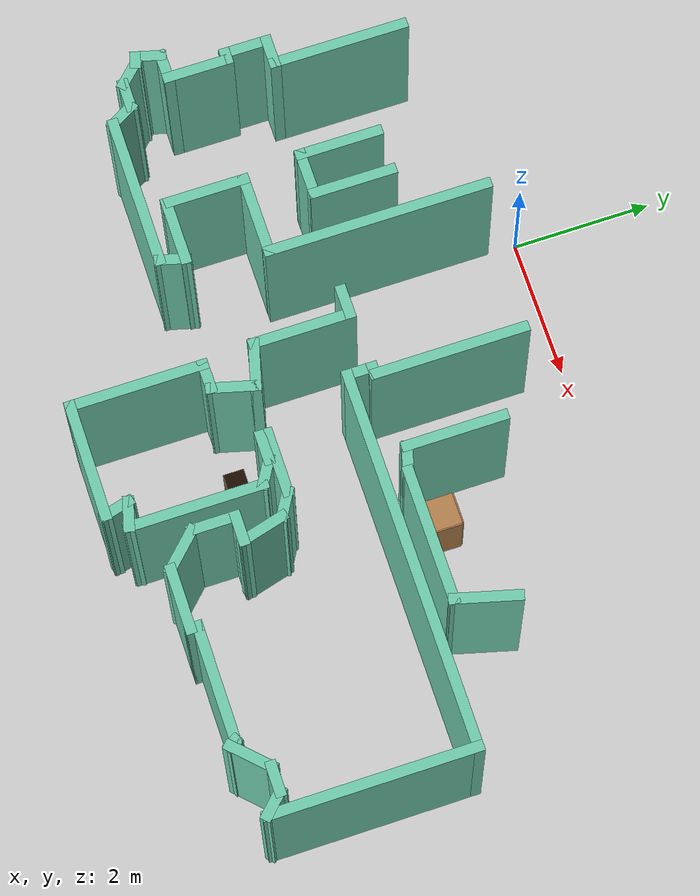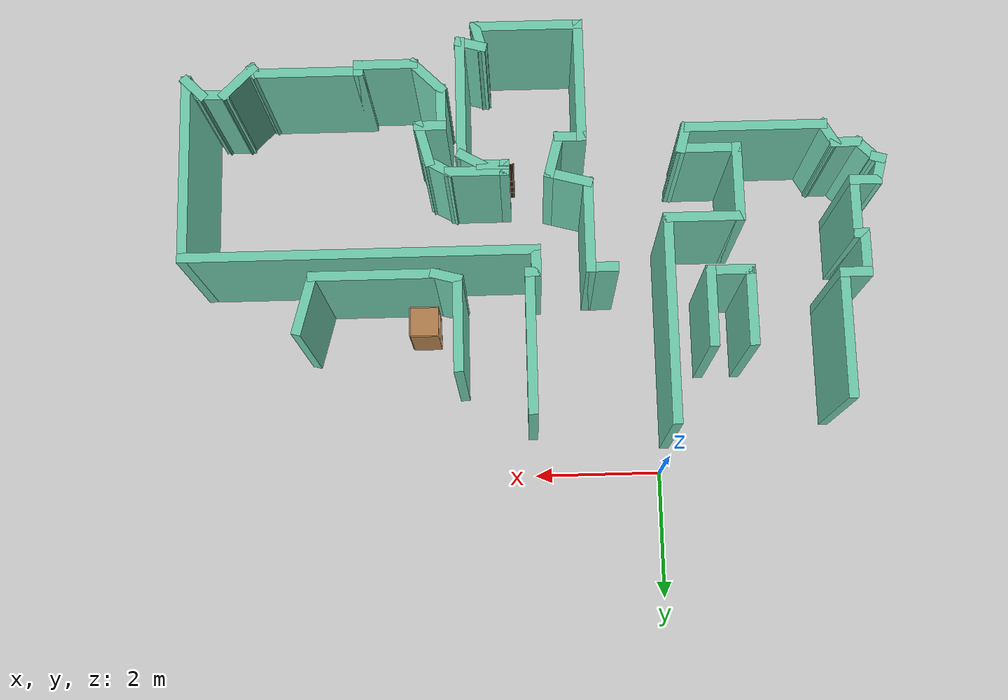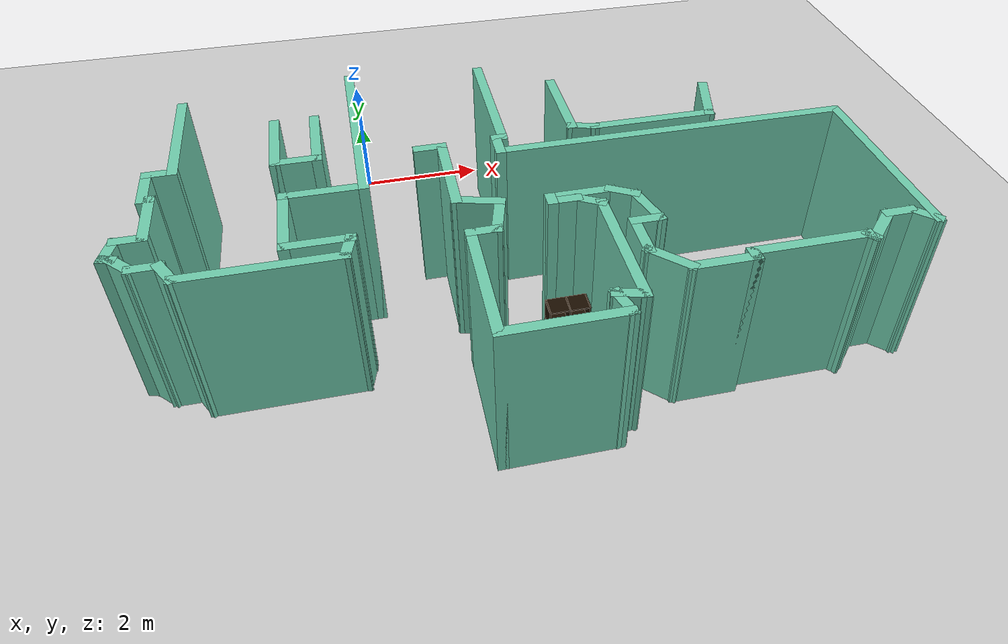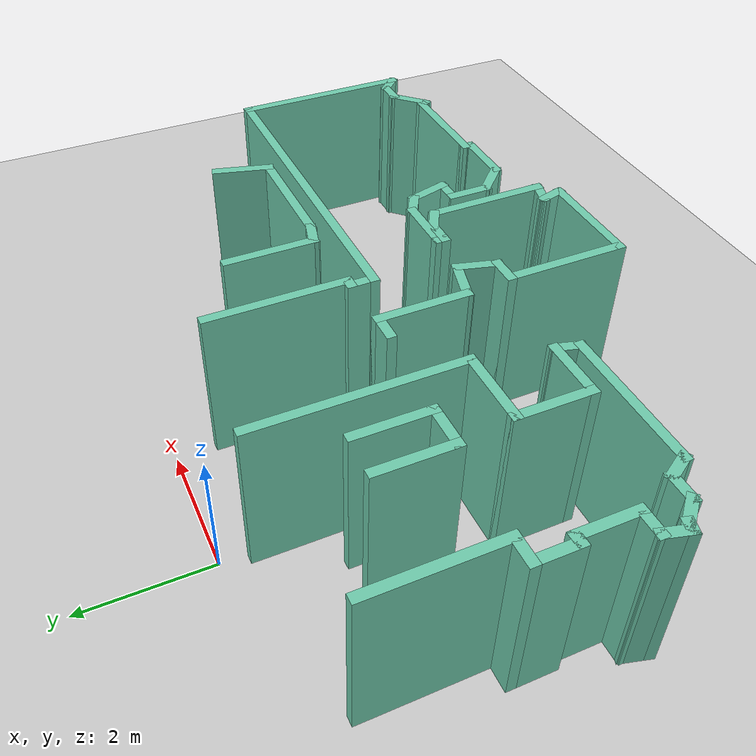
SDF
<sdf version="1.7">
 <world name="default">
  <model name="ground_plane">
   <static>1</static>
   <link name="link">
    <collision name="collision">
     <geometry><plane><normal>0 0 1</normal><size>100 100</size></plane></geometry>
     <surface>
      <contact><collide_bitmask>65535</collide_bitmask></contact>
      <friction><ode><mu>100</mu><mu2>50</mu2></ode></friction>
     </surface>
    </collision>
    <visual name="visual">
     <cast_shadows>0</cast_shadows>
     <geometry><plane><normal>0 0 1</normal><size>100 100</size></plane></geometry>
     <material>
      <script><uri>file://media/materials/scripts/gazebo.material</uri><name>Gazebo/Grey</name></script>
     </material>
    </visual>
   </link>
  </model>
  <model name="map_11">
   <pose>1.26174 -0.26535 0 0 -0 0</pose>
   <link name="Wall_135">
    <collision name="Wall_135_Collision">
     <geometry><box><size>1.25 0.15 2.5</size></box></geometry>
     <pose>0 0 1.25 0 -0 0</pose>
    </collision>
    <visual name="Wall_135_Visual">
     <pose>0 0 1.25 0 -0 0</pose>
     <geometry><box><size>1.25 0.15 2.5</size></box></geometry>
     <material>
      <script><uri>file://media/materials/scripts/gazebo.material</uri><name>Gazebo/Grey</name></script>
      <ambient>0.435294 0.796078 0.67451 1</ambient>
     </material>
     <meta><layer>0</layer></meta>
    </visual>
    <pose>-2.56461 -1.91965 0 0 -0 -1.5708</pose>
   </link>
   <link name="Wall_136">
    <collision name="Wall_136_Collision">
     <geometry><box><size>0.75 0.15 2.5</size></box></geometry>
     <pose>0 0 1.25 0 -0 0</pose>
    </collision>
    <visual name="Wall_136_Visual">
     <pose>0 0 1.25 0 -0 0</pose>
     <geometry><box><size>0.75 0.15 2.5</size></box></geometry>
     <material>
      <script><uri>file://media/materials/scripts/gazebo.material</uri><name>Gazebo/Grey</name></script>
      <ambient>0.435294 0.796078 0.67451 1</ambient>
     </material>
     <meta><layer>0</layer></meta>
    </visual>
    <pose>-2.26461 -2.46965 0 0 -0 0</pose>
   </link>
   <link name="Wall_137">
    <collision name="Wall_137_Collision">
     <geometry><box><size>1.25 0.15 2.5</size></box></geometry>
     <pose>0 0 1.25 0 -0 0</pose>
    </collision>
    <visual name="Wall_137_Visual">
     <pose>0 0 1.25 0 -0 0</pose>
     <geometry><box><size>1.25 0.15 2.5</size></box></geometry>
     <material>
      <script><uri>file://media/materials/scripts/gazebo.material</uri><name>Gazebo/Grey</name></script>
      <ambient>0.435294 0.796078 0.67451 1</ambient>
     </material>
     <meta><layer>0</layer></meta>
    </visual>
    <pose>-1.96461 -1.91965 0 0 -0 1.5708</pose>
   </link>
   <link name="Wall_19">
    <collision name="Wall_19_Collision">
     <geometry><box><size>2 0.15 2.5</size></box></geometry>
     <pose>0 0 1.25 0 -0 0</pose>
    </collision>
    <visual name="Wall_19_Visual">
     <pose>0 0 1.25 0 -0 0</pose>
     <geometry><box><size>2 0.15 2.5</size></box></geometry>
     <material>
      <script><uri>file://media/materials/scripts/gazebo.material</uri><name>Gazebo/Grey</name></script>
      <ambient>0.435294 0.796078 0.67451 1</ambient>
     </material>
     <meta><layer>0</layer></meta>
    </visual>
    <pose>-3.97725 -1.46125 0 0 -0 -1.5708</pose>
   </link>
   <link name="Wall_20">
    <collision name="Wall_20_Collision">
     <geometry><box><size>0.5 0.15 2.5</size></box></geometry>
     <pose>0 0 1.25 0 -0 0</pose>
    </collision>
    <visual name="Wall_20_Visual">
     <pose>0 0 1.25 0 -0 0</pose>
     <geometry><box><size>0.5 0.15 2.5</size></box></geometry>
     <material>
      <script><uri>file://media/materials/scripts/gazebo.material</uri><name>Gazebo/Grey</name></script>
      <ambient>0.435294 0.796078 0.67451 1</ambient>
     </material>
     <meta><layer>0</layer></meta>
    </visual>
    <pose>-4.15225 -2.38625 0 0 -0 3.14159</pose>
   </link>
   <link name="Wall_21">
    <collision name="Wall_21_Collision">
     <geometry><box><size>0.75 0.15 2.5</size></box></geometry>
     <pose>0 0 1.25 0 -0 0</pose>
    </collision>
    <visual name="Wall_21_Visual">
     <pose>0 0 1.25 0 -0 0</pose>
     <geometry><box><size>0.75 0.15 2.5</size></box></geometry>
     <material>
      <script><uri>file://media/materials/scripts/gazebo.material</uri><name>Gazebo/Grey</name></script>
      <ambient>0.435294 0.796078 0.67451 1</ambient>
     </material>
     <meta><layer>0</layer></meta>
    </visual>
    <pose>-4.32725 -2.68626 0 0 -0 -1.5708</pose>
   </link>
   <link name="Wall_24">
    <collision name="Wall_24_Collision">
     <geometry><box><size>0.25 0.15 2.5</size></box></geometry>
     <pose>0 0 1.25 0 -0 0</pose>
    </collision>
    <visual name="Wall_24_Visual">
     <pose>0 0 1.25 0 -0 0</pose>
     <geometry><box><size>0.25 0.15 2.5</size></box></geometry>
     <material>
      <script><uri>file://media/materials/scripts/gazebo.material</uri><name>Gazebo/Grey</name></script>
      <ambient>0.435294 0.796078 0.67451 1</ambient>
     </material>
     <meta><layer>0</layer></meta>
    </visual>
    <pose>-4.27725 -2.98625 0 0 -0 0</pose>
   </link>
   <link name="Wall_25">
    <collision name="Wall_25_Collision">
     <geometry><box><size>1 0.15 2.5</size></box></geometry>
     <pose>0 0 1.25 0 -0 0</pose>
    </collision>
    <visual name="Wall_25_Visual">
     <pose>0 0 1.25 0 -0 0</pose>
     <geometry><box><size>1 0.15 2.5</size></box></geometry>
     <material>
      <script><uri>file://media/materials/scripts/gazebo.material</uri><name>Gazebo/Grey</name></script>
      <ambient>0.435294 0.796078 0.67451 1</ambient>
     </material>
     <meta><layer>0</layer></meta>
    </visual>
    <pose>-4.22725 -3.41125 0 0 -0 -1.5708</pose>
   </link>
   <link name="Wall_26">
    <collision name="Wall_26_Collision">
     <geometry><box><size>0.5 0.15 2.5</size></box></geometry>
     <pose>0 0 1.25 0 -0 0</pose>
    </collision>
    <visual name="Wall_26_Visual">
     <pose>0 0 1.25 0 -0 0</pose>
     <geometry><box><size>0.5 0.15 2.5</size></box></geometry>
     <material>
      <script><uri>file://media/materials/scripts/gazebo.material</uri><name>Gazebo/Grey</name></script>
      <ambient>0.435294 0.796078 0.67451 1</ambient>
     </material>
     <meta><layer>0</layer></meta>
    </visual>
    <pose>-4.40225 -3.83625 0 0 -0 3.14159</pose>
   </link>
   <link name="Wall_27">
    <collision name="Wall_27_Collision">
     <geometry><box><size>0.5 0.15 2.5</size></box></geometry>
     <pose>0 0 1.25 0 -0 0</pose>
    </collision>
    <visual name="Wall_27_Visual">
     <pose>0 0 1.25 0 -0 0</pose>
     <geometry><box><size>0.5 0.15 2.5</size></box></geometry>
     <material>
      <script><uri>file://media/materials/scripts/gazebo.material</uri><name>Gazebo/Grey</name></script>
      <ambient>0.435294 0.796078 0.67451 1</ambient>
     </material>
     <meta><layer>0</layer></meta>
    </visual>
    <pose>-4.62254 -4.00529 0 0 -0 -1.8326</pose>
   </link>
   <link name="Wall_28">
    <collision name="Wall_28_Collision">
     <geometry><box><size>0.25 0.15 2.5</size></box></geometry>
     <pose>0 0 1.25 0 -0 0</pose>
    </collision>
    <visual name="Wall_28_Visual">
     <pose>0 0 1.25 0 -0 0</pose>
     <geometry><box><size>0.25 0.15 2.5</size></box></geometry>
     <material>
      <script><uri>file://media/materials/scripts/gazebo.material</uri><name>Gazebo/Grey</name></script>
      <ambient>0.435294 0.796078 0.67451 1</ambient>
     </material>
     <meta><layer>0</layer></meta>
    </visual>
    <pose>-4.61954 -4.18727 0 0 -0 -0.261799</pose>
   </link>
   <link name="Wall_29">
    <collision name="Wall_29_Collision">
     <geometry><box><size>0.5 0.15 2.5</size></box></geometry>
     <pose>0 0 1.25 0 -0 0</pose>
    </collision>
    <visual name="Wall_29_Visual">
     <pose>0 0 1.25 0 -0 0</pose>
     <geometry><box><size>0.5 0.15 2.5</size></box></geometry>
     <material>
      <script><uri>file://media/materials/scripts/gazebo.material</uri><name>Gazebo/Grey</name></script>
      <ambient>0.435294 0.796078 0.67451 1</ambient>
     </material>
     <meta><layer>0</layer></meta>
    </visual>
    <pose>-4.4475 -4.32395 0 0 -0 -0.785398</pose>
   </link>
   <link name="Wall_30">
    <collision name="Wall_30_Collision">
     <geometry><box><size>0.5 0.15 2.5</size></box></geometry>
     <pose>0 0 1.25 0 -0 0</pose>
    </collision>
    <visual name="Wall_30_Visual">
     <pose>0 0 1.25 0 -0 0</pose>
     <geometry><box><size>0.5 0.15 2.5</size></box></geometry>
     <material>
      <script><uri>file://media/materials/scripts/gazebo.material</uri><name>Gazebo/Grey</name></script>
      <ambient>0.435294 0.796078 0.67451 1</ambient>
     </material>
     <meta><layer>0</layer></meta>
    </visual>
    <pose>-4.14875 -4.4477 0 0 -0 0</pose>
   </link>
   <link name="Wall_31">
    <collision name="Wall_31_Collision">
     <geometry><box><size>0.5 0.15 2.5</size></box></geometry>
     <pose>0 0 1.25 0 -0 0</pose>
    </collision>
    <visual name="Wall_31_Visual">
     <pose>0 0 1.25 0 -0 0</pose>
     <geometry><box><size>0.5 0.15 2.5</size></box></geometry>
     <material>
      <script><uri>file://media/materials/scripts/gazebo.material</uri><name>Gazebo/Grey</name></script>
      <ambient>0.435294 0.796078 0.67451 1</ambient>
     </material>
     <meta><layer>0</layer></meta>
    </visual>
    <pose>-3.88625 -4.59925 0 0 -0 -1.0472</pose>
   </link>
   <link name="Wall_32">
    <collision name="Wall_32_Collision">
     <geometry><box><size>2.25 0.15 2.5</size></box></geometry>
     <pose>0 0 1.25 0 -0 0</pose>
    </collision>
    <visual name="Wall_32_Visual">
     <pose>0 0 1.25 0 -0 0</pose>
     <geometry><box><size>2.25 0.15 2.5</size></box></geometry>
     <material>
      <script><uri>file://media/materials/scripts/gazebo.material</uri><name>Gazebo/Grey</name></script>
      <ambient>0.435294 0.796078 0.67451 1</ambient>
     </material>
     <meta><layer>0</layer></meta>
    </visual>
    <pose>-2.74875 -4.75081 0 0 -0 0</pose>
   </link>
   <link name="Wall_33">
    <collision name="Wall_33_Collision">
     <geometry><box><size>0.5 0.15 2.5</size></box></geometry>
     <pose>0 0 1.25 0 -0 0</pose>
    </collision>
    <visual name="Wall_33_Visual">
     <pose>0 0 1.25 0 -0 0</pose>
     <geometry><box><size>0.5 0.15 2.5</size></box></geometry>
     <material>
      <script><uri>file://media/materials/scripts/gazebo.material</uri><name>Gazebo/Grey</name></script>
      <ambient>0.435294 0.796078 0.67451 1</ambient>
     </material>
     <meta><layer>0</layer></meta>
    </visual>
    <pose>-1.65346 -4.58177 0 0 -0 1.309</pose>
   </link>
   <link name="Wall_34">
    <collision name="Wall_34_Collision">
     <geometry><box><size>1 0.15 2.5</size></box></geometry>
     <pose>0 0 1.25 0 -0 0</pose>
    </collision>
    <visual name="Wall_34_Visual">
     <pose>0 0 1.25 0 -0 0</pose>
     <geometry><box><size>1 0.15 2.5</size></box></geometry>
     <material>
      <script><uri>file://media/materials/scripts/gazebo.material</uri><name>Gazebo/Grey</name></script>
      <ambient>0.435294 0.796078 0.67451 1</ambient>
     </material>
     <meta><layer>0</layer></meta>
    </visual>
    <pose>-2.03317 -4.41273 0 0 -0 3.14159</pose>
   </link>
   <link name="Wall_35">
    <collision name="Wall_35_Collision">
     <geometry><box><size>1.25 0.15 2.5</size></box></geometry>
     <pose>0 0 1.25 0 -0 0</pose>
    </collision>
    <visual name="Wall_35_Visual">
     <pose>0 0 1.25 0 -0 0</pose>
     <geometry><box><size>1.25 0.15 2.5</size></box></geometry>
     <material>
      <script><uri>file://media/materials/scripts/gazebo.material</uri><name>Gazebo/Grey</name></script>
      <ambient>0.435294 0.796078 0.67451 1</ambient>
     </material>
     <meta><layer>0</layer></meta>
    </visual>
    <pose>-2.45817 -3.86273 0 0 -0 1.5708</pose>
   </link>
   <link name="Wall_36">
    <collision name="Wall_36_Collision">
     <geometry><box><size>1.25 0.15 2.5</size></box></geometry>
     <pose>0 0 1.25 0 -0 0</pose>
    </collision>
    <visual name="Wall_36_Visual">
     <pose>0 0 1.25 0 -0 0</pose>
     <geometry><box><size>1.25 0.15 2.5</size></box></geometry>
     <material>
      <script><uri>file://media/materials/scripts/gazebo.material</uri><name>Gazebo/Grey</name></script>
      <ambient>0.435294 0.796078 0.67451 1</ambient>
     </material>
     <meta><layer>0</layer></meta>
    </visual>
    <pose>-1.90817 -3.31273 0 0 -0 0</pose>
   </link>
   <link name="Wall_39">
    <collision name="Wall_39_Collision">
     <geometry><box><size>3.25 0.15 2.5</size></box></geometry>
     <pose>0 0 1.25 0 -0 0</pose>
    </collision>
    <visual name="Wall_39_Visual">
     <pose>0 0 1.25 0 -0 0</pose>
     <geometry><box><size>3.25 0.15 2.5</size></box></geometry>
     <material>
      <script><uri>file://media/materials/scripts/gazebo.material</uri><name>Gazebo/Grey</name></script>
      <ambient>0.435294 0.796078 0.67451 1</ambient>
     </material>
     <meta><layer>0</layer></meta>
    </visual>
    <pose>-1.35817 -1.76273 0 0 -0 1.5708</pose>
   </link>
   <link name="Wall_42">
    <collision name="Wall_42_Collision">
     <geometry><box><size>0.5 0.15 2.5</size></box></geometry>
     <pose>0 0 1.25 0 -0 0</pose>
    </collision>
    <visual name="Wall_42_Visual">
     <pose>0 0 1.25 0 -0 0</pose>
     <geometry><box><size>0.5 0.15 2.5</size></box></geometry>
     <material>
      <script><uri>file://media/materials/scripts/gazebo.material</uri><name>Gazebo/Grey</name></script>
      <ambient>0.435294 0.796078 0.67451 1</ambient>
     </material>
     <meta><layer>0</layer></meta>
    </visual>
    <pose>-0.333168 -2.56273 0 0 -0 0</pose>
   </link>
   <link name="Wall_43">
    <collision name="Wall_43_Collision">
     <geometry><box><size>1.5 0.15 2.5</size></box></geometry>
     <pose>0 0 1.25 0 -0 0</pose>
    </collision>
    <visual name="Wall_43_Visual">
     <pose>0 0 1.25 0 -0 0</pose>
     <geometry><box><size>1.5 0.15 2.5</size></box></geometry>
     <material>
      <script><uri>file://media/materials/scripts/gazebo.material</uri><name>Gazebo/Grey</name></script>
      <ambient>0.435294 0.796078 0.67451 1</ambient>
     </material>
     <meta><layer>0</layer></meta>
    </visual>
    <pose>-0.158168 -3.23773 0 0 -0 -1.5708</pose>
   </link>
   <link name="Wall_44">
    <collision name="Wall_44_Collision">
     <geometry><box><size>0.75 0.15 2.5</size></box></geometry>
     <pose>0 0 1.25 0 -0 0</pose>
    </collision>
    <visual name="Wall_44_Visual">
     <pose>0 0 1.25 0 -0 0</pose>
     <geometry><box><size>0.75 0.15 2.5</size></box></geometry>
     <material>
      <script><uri>file://media/materials/scripts/gazebo.material</uri><name>Gazebo/Grey</name></script>
      <ambient>0.435294 0.796078 0.67451 1</ambient>
     </material>
     <meta><layer>0</layer></meta>
    </visual>
    <pose>0.13161 -3.99038 0 0 -0 -0.261799</pose>
   </link>
   <link name="Wall_45">
    <collision name="Wall_45_Collision">
     <geometry><box><size>0.75 0.15 2.5</size></box></geometry>
     <pose>0 0 1.25 0 -0 0</pose>
    </collision>
    <visual name="Wall_45_Visual">
     <pose>0 0 1.25 0 -0 0</pose>
     <geometry><box><size>0.75 0.15 2.5</size></box></geometry>
     <material>
      <script><uri>file://media/materials/scripts/gazebo.material</uri><name>Gazebo/Grey</name></script>
      <ambient>0.435294 0.796078 0.67451 1</ambient>
     </material>
     <meta><layer>0</layer></meta>
    </visual>
    <pose>0.343742 -4.3578 0 0 -0 -1.8326</pose>
   </link>
   <link name="Wall_47">
    <collision name="Wall_47_Collision">
     <geometry><box><size>0.5 0.15 2.5</size></box></geometry>
     <pose>0 0 1.25 0 -0 0</pose>
    </collision>
    <visual name="Wall_47_Visual">
     <pose>0 0 1.25 0 -0 0</pose>
     <geometry><box><size>0.5 0.15 2.5</size></box></geometry>
     <material>
      <script><uri>file://media/materials/scripts/gazebo.material</uri><name>Gazebo/Grey</name></script>
      <ambient>0.435294 0.796078 0.67451 1</ambient>
     </material>
     <meta><layer>0</layer></meta>
    </visual>
    <pose>0.091096 -4.64758 0 0 -0 3.14159</pose>
   </link>
   <link name="Wall_48">
    <collision name="Wall_48_Collision">
     <geometry><box><size>2 0.15 2.5</size></box></geometry>
     <pose>0 0 1.25 0 -0 0</pose>
    </collision>
    <visual name="Wall_48_Visual">
     <pose>0 0 1.25 0 -0 0</pose>
     <geometry><box><size>2 0.15 2.5</size></box></geometry>
     <material>
      <script><uri>file://media/materials/scripts/gazebo.material</uri><name>Gazebo/Grey</name></script>
      <ambient>0.435294 0.796078 0.67451 1</ambient>
     </material>
     <meta><layer>0</layer></meta>
    </visual>
    <pose>-0.083904 -5.57258 0 0 -0 -1.5708</pose>
   </link>
   <link name="Wall_49">
    <collision name="Wall_49_Collision">
     <geometry><box><size>1.75 0.15 2.5</size></box></geometry>
     <pose>0 0 1.25 0 -0 0</pose>
    </collision>
    <visual name="Wall_49_Visual">
     <pose>0 0 1.25 0 -0 0</pose>
     <geometry><box><size>1.75 0.15 2.5</size></box></geometry>
     <material>
      <script><uri>file://media/materials/scripts/gazebo.material</uri><name>Gazebo/Grey</name></script>
      <ambient>0.435294 0.796078 0.67451 1</ambient>
     </material>
     <meta><layer>0</layer></meta>
    </visual>
    <pose>0.716096 -6.49758 0 0 -0 0</pose>
   </link>
   <link name="Wall_50">
    <collision name="Wall_50_Collision">
     <geometry><box><size>0.5 0.15 2.5</size></box></geometry>
     <pose>0 0 1.25 0 -0 0</pose>
    </collision>
    <visual name="Wall_50_Visual">
     <pose>0 0 1.25 0 -0 0</pose>
     <geometry><box><size>0.5 0.15 2.5</size></box></geometry>
     <material>
      <script><uri>file://media/materials/scripts/gazebo.material</uri><name>Gazebo/Grey</name></script>
      <ambient>0.435294 0.796078 0.67451 1</ambient>
     </material>
     <meta><layer>0</layer></meta>
    </visual>
    <pose>1.4708 -6.32854 0 0 -0 1.8326</pose>
   </link>
   <link name="Wall_51">
    <collision name="Wall_51_Collision">
     <geometry><box><size>0.5 0.15 2.5</size></box></geometry>
     <pose>0 0 1.25 0 -0 0</pose>
    </collision>
    <visual name="Wall_51_Visual">
     <pose>0 0 1.25 0 -0 0</pose>
     <geometry><box><size>0.5 0.15 2.5</size></box></geometry>
     <material>
      <script><uri>file://media/materials/scripts/gazebo.material</uri><name>Gazebo/Grey</name></script>
      <ambient>0.435294 0.796078 0.67451 1</ambient>
     </material>
     <meta><layer>0</layer></meta>
    </visual>
    <pose>1.59455 -6.2048 0 0 -0 -0.261799</pose>
   </link>
   <link name="Wall_52">
    <collision name="Wall_52_Collision">
     <geometry><box><size>2 0.15 2.5</size></box></geometry>
     <pose>0 0 1.25 0 -0 0</pose>
    </collision>
    <visual name="Wall_52_Visual">
     <pose>0 0 1.25 0 -0 0</pose>
     <geometry><box><size>2 0.15 2.5</size></box></geometry>
     <material>
      <script><uri>file://media/materials/scripts/gazebo.material</uri><name>Gazebo/Grey</name></script>
      <ambient>0.435294 0.796078 0.67451 1</ambient>
     </material>
     <meta><layer>0</layer></meta>
    </visual>
    <pose>1.76358 -5.32509 0 0 -0 1.5708</pose>
   </link>
   <link name="Wall_53">
    <collision name="Wall_53_Collision">
     <geometry><box><size>0.5 0.15 2.5</size></box></geometry>
     <pose>0 0 1.25 0 -0 0</pose>
    </collision>
    <visual name="Wall_53_Visual">
     <pose>0 0 1.25 0 -0 0</pose>
     <geometry><box><size>0.5 0.15 2.5</size></box></geometry>
     <material>
      <script><uri>file://media/materials/scripts/gazebo.material</uri><name>Gazebo/Grey</name></script>
      <ambient>0.435294 0.796078 0.67451 1</ambient>
     </material>
     <meta><layer>0</layer></meta>
    </visual>
    <pose>1.61203 -4.31259 0 0 -0 2.61799</pose>
   </link>
   <link name="Wall_54">
    <collision name="Wall_54_Collision">
     <geometry><box><size>0.5 0.15 2.5</size></box></geometry>
     <pose>0 0 1.25 0 -0 0</pose>
    </collision>
    <visual name="Wall_54_Visual">
     <pose>0 0 1.25 0 -0 0</pose>
     <geometry><box><size>0.5 0.15 2.5</size></box></geometry>
     <material>
      <script><uri>file://media/materials/scripts/gazebo.material</uri><name>Gazebo/Grey</name></script>
      <ambient>0.435294 0.796078 0.67451 1</ambient>
     </material>
     <meta><layer>0</layer></meta>
    </visual>
    <pose>1.28547 -4.22509 0 0 -0 3.14159</pose>
   </link>
   <link name="Wall_55">
    <collision name="Wall_55_Collision">
     <geometry><box><size>0.25 0.15 2.5</size></box></geometry>
     <pose>0 0 1.25 0 -0 0</pose>
    </collision>
    <visual name="Wall_55_Visual">
     <pose>0 0 1.25 0 -0 0</pose>
     <geometry><box><size>0.25 0.15 2.5</size></box></geometry>
     <material>
      <script><uri>file://media/materials/scripts/gazebo.material</uri><name>Gazebo/Grey</name></script>
      <ambient>0.435294 0.796078 0.67451 1</ambient>
     </material>
     <meta><layer>0</layer></meta>
    </visual>
    <pose>1.11048 -4.17509 0 0 -0 1.5708</pose>
   </link>
   <link name="Wall_56">
    <collision name="Wall_56_Collision">
     <geometry><box><size>1 0.15 2.5</size></box></geometry>
     <pose>0 0 1.25 0 -0 0</pose>
    </collision>
    <visual name="Wall_56_Visual">
     <pose>0 0 1.25 0 -0 0</pose>
     <geometry><box><size>1 0.15 2.5</size></box></geometry>
     <material>
      <script><uri>file://media/materials/scripts/gazebo.material</uri><name>Gazebo/Grey</name></script>
      <ambient>0.435294 0.796078 0.67451 1</ambient>
     </material>
     <meta><layer>0</layer></meta>
    </visual>
    <pose>1.53547 -4.12509 0 0 -0 0</pose>
   </link>
   <link name="Wall_57">
    <collision name="Wall_57_Collision">
     <geometry><box><size>0.5 0.15 2.5</size></box></geometry>
     <pose>0 0 1.25 0 -0 0</pose>
    </collision>
    <visual name="Wall_57_Visual">
     <pose>0 0 1.25 0 -0 0</pose>
     <geometry><box><size>0.5 0.15 2.5</size></box></geometry>
     <material>
      <script><uri>file://media/materials/scripts/gazebo.material</uri><name>Gazebo/Grey</name></script>
      <ambient>0.435294 0.796078 0.67451 1</ambient>
     </material>
     <meta><layer>0</layer></meta>
    </visual>
    <pose>2.11203 -4.21259 0 0 -0 -0.523599</pose>
   </link>
   <link name="Wall_58">
    <collision name="Wall_58_Collision">
     <geometry><box><size>0.75 0.15 2.5</size></box></geometry>
     <pose>0 0 1.25 0 -0 0</pose>
    </collision>
    <visual name="Wall_58_Visual">
     <pose>0 0 1.25 0 -0 0</pose>
     <geometry><box><size>0.75 0.15 2.5</size></box></geometry>
     <material>
      <script><uri>file://media/materials/scripts/gazebo.material</uri><name>Gazebo/Grey</name></script>
      <ambient>0.435294 0.796078 0.67451 1</ambient>
     </material>
     <meta><layer>0</layer></meta>
    </visual>
    <pose>2.34123 -4.58987 0 0 -0 -1.309</pose>
   </link>
   <link name="Wall_59">
    <collision name="Wall_59_Collision">
     <geometry><box><size>0.5 0.15 2.5</size></box></geometry>
     <pose>0 0 1.25 0 -0 0</pose>
    </collision>
    <visual name="Wall_59_Visual">
     <pose>0 0 1.25 0 -0 0</pose>
     <geometry><box><size>0.5 0.15 2.5</size></box></geometry>
     <material>
      <script><uri>file://media/materials/scripts/gazebo.material</uri><name>Gazebo/Grey</name></script>
      <ambient>0.435294 0.796078 0.67451 1</ambient>
     </material>
     <meta><layer>0</layer></meta>
    </visual>
    <pose>2.24388 -4.87965 0 0 -0 3.14159</pose>
   </link>
   <link name="Wall_60">
    <collision name="Wall_60_Collision">
     <geometry><box><size>0.75 0.15 2.5</size></box></geometry>
     <pose>0 0 1.25 0 -0 0</pose>
    </collision>
    <visual name="Wall_60_Visual">
     <pose>0 0 1.25 0 -0 0</pose>
     <geometry><box><size>0.75 0.15 2.5</size></box></geometry>
     <material>
      <script><uri>file://media/materials/scripts/gazebo.material</uri><name>Gazebo/Grey</name></script>
      <ambient>0.435294 0.796078 0.67451 1</ambient>
     </material>
     <meta><layer>0</layer></meta>
    </visual>
    <pose>2.06887 -5.17965 0 0 -0 -1.5708</pose>
   </link>
   <link name="Wall_61">
    <collision name="Wall_61_Collision">
     <geometry><box><size>0.75 0.15 2.5</size></box></geometry>
     <pose>0 0 1.25 0 -0 0</pose>
    </collision>
    <visual name="Wall_61_Visual">
     <pose>0 0 1.25 0 -0 0</pose>
     <geometry><box><size>0.75 0.15 2.5</size></box></geometry>
     <material>
      <script><uri>file://media/materials/scripts/gazebo.material</uri><name>Gazebo/Grey</name></script>
      <ambient>0.435294 0.796078 0.67451 1</ambient>
     </material>
     <meta><layer>0</layer></meta>
    </visual>
    <pose>2.28101 -5.69178 0 0 -0 -0.785398</pose>
   </link>
   <link name="Wall_62">
    <collision name="Wall_62_Collision">
     <geometry><box><size>1 0.15 2.5</size></box></geometry>
     <pose>0 0 1.25 0 -0 0</pose>
    </collision>
    <visual name="Wall_62_Visual">
     <pose>0 0 1.25 0 -0 0</pose>
     <geometry><box><size>1 0.15 2.5</size></box></geometry>
     <material>
      <script><uri>file://media/materials/scripts/gazebo.material</uri><name>Gazebo/Grey</name></script>
      <ambient>0.435294 0.796078 0.67451 1</ambient>
     </material>
     <meta><layer>0</layer></meta>
    </visual>
    <pose>2.91814 -5.90391 0 0 -0 0</pose>
   </link>
   <link name="Wall_63">
    <collision name="Wall_63_Collision">
     <geometry><box><size>0.25 0.15 2.5</size></box></geometry>
     <pose>0 0 1.25 0 -0 0</pose>
    </collision>
    <visual name="Wall_63_Visual">
     <pose>0 0 1.25 0 -0 0</pose>
     <geometry><box><size>0.25 0.15 2.5</size></box></geometry>
     <material>
      <script><uri>file://media/materials/scripts/gazebo.material</uri><name>Gazebo/Grey</name></script>
      <ambient>0.435294 0.796078 0.67451 1</ambient>
     </material>
     <meta><layer>0</layer></meta>
    </visual>
    <pose>3.34314 -5.85391 0 0 -0 1.5708</pose>
   </link>
   <link name="Wall_64">
    <collision name="Wall_64_Collision">
     <geometry><box><size>1.75 0.15 2.5</size></box></geometry>
     <pose>0 0 1.25 0 -0 0</pose>
    </collision>
    <visual name="Wall_64_Visual">
     <pose>0 0 1.25 0 -0 0</pose>
     <geometry><box><size>1.75 0.15 2.5</size></box></geometry>
     <material>
      <script><uri>file://media/materials/scripts/gazebo.material</uri><name>Gazebo/Grey</name></script>
      <ambient>0.435294 0.796078 0.67451 1</ambient>
     </material>
     <meta><layer>0</layer></meta>
    </visual>
    <pose>4.14314 -5.80391 0 0 -0 0</pose>
   </link>
   <link name="Wall_65">
    <collision name="Wall_65_Collision">
     <geometry><box><size>0.25 0.15 2.5</size></box></geometry>
     <pose>0 0 1.25 0 -0 0</pose>
    </collision>
    <visual name="Wall_65_Visual">
     <pose>0 0 1.25 0 -0 0</pose>
     <geometry><box><size>0.25 0.15 2.5</size></box></geometry>
     <material>
      <script><uri>file://media/materials/scripts/gazebo.material</uri><name>Gazebo/Grey</name></script>
      <ambient>0.435294 0.796078 0.67451 1</ambient>
     </material>
     <meta><layer>0</layer></meta>
    </visual>
    <pose>4.96814 -5.84721 0 0 -0 -1.0472</pose>
   </link>
   <link name="Wall_66">
    <collision name="Wall_66_Collision">
     <geometry><box><size>0.75 0.15 2.5</size></box></geometry>
     <pose>0 0 1.25 0 -0 0</pose>
    </collision>
    <visual name="Wall_66_Visual">
     <pose>0 0 1.25 0 -0 0</pose>
     <geometry><box><size>0.75 0.15 2.5</size></box></geometry>
     <material>
      <script><uri>file://media/materials/scripts/gazebo.material</uri><name>Gazebo/Grey</name></script>
      <ambient>0.435294 0.796078 0.67451 1</ambient>
     </material>
     <meta><layer>0</layer></meta>
    </visual>
    <pose>5.20527 -5.67838 0 0 -0 0.785398</pose>
   </link>
   <link name="Wall_67">
    <collision name="Wall_67_Collision">
     <geometry><box><size>0.5 0.15 2.5</size></box></geometry>
     <pose>0 0 1.25 0 -0 0</pose>
    </collision>
    <visual name="Wall_67_Visual">
     <pose>0 0 1.25 0 -0 0</pose>
     <geometry><box><size>0.5 0.15 2.5</size></box></geometry>
     <material>
      <script><uri>file://media/materials/scripts/gazebo.material</uri><name>Gazebo/Grey</name></script>
      <ambient>0.435294 0.796078 0.67451 1</ambient>
     </material>
     <meta><layer>0</layer></meta>
    </visual>
    <pose>5.5924 -5.46625 0 0 -0 0</pose>
   </link>
   <link name="Wall_68">
    <collision name="Wall_68_Collision">
     <geometry><box><size>0.5 0.15 2.5</size></box></geometry>
     <pose>0 0 1.25 0 -0 0</pose>
    </collision>
    <visual name="Wall_68_Visual">
     <pose>0 0 1.25 0 -0 0</pose>
     <geometry><box><size>0.5 0.15 2.5</size></box></geometry>
     <material>
      <script><uri>file://media/materials/scripts/gazebo.material</uri><name>Gazebo/Grey</name></script>
      <ambient>0.435294 0.796078 0.67451 1</ambient>
     </material>
     <meta><layer>0</layer></meta>
    </visual>
    <pose>5.89115 -5.58999 0 0 -0 -0.785398</pose>
   </link>
   <link name="Wall_69">
    <collision name="Wall_69_Collision">
     <geometry><box><size>3 0.15 2.5</size></box></geometry>
     <pose>0 0 1.25 0 -0 0</pose>
    </collision>
    <visual name="Wall_69_Visual">
     <pose>0 0 1.25 0 -0 0</pose>
     <geometry><box><size>3 0.15 2.5</size></box></geometry>
     <material>
      <script><uri>file://media/materials/scripts/gazebo.material</uri><name>Gazebo/Grey</name></script>
      <ambient>0.435294 0.796078 0.67451 1</ambient>
     </material>
     <meta><layer>0</layer></meta>
    </visual>
    <pose>6.01489 -4.28874 0 0 -0 1.5708</pose>
   </link>
   <link name="Wall_70">
    <collision name="Wall_70_Collision">
     <geometry><box><size>5.5 0.15 2.5</size></box></geometry>
     <pose>0 0 1.25 0 -0 0</pose>
    </collision>
    <visual name="Wall_70_Visual">
     <pose>0 0 1.25 0 -0 0</pose>
     <geometry><box><size>5.5 0.15 2.5</size></box></geometry>
     <material>
      <script><uri>file://media/materials/scripts/gazebo.material</uri><name>Gazebo/Grey</name></script>
      <ambient>0.435294 0.796078 0.67451 1</ambient>
     </material>
     <meta><layer>0</layer></meta>
    </visual>
    <pose>3.33989 -2.86374 0 0 -0 3.14159</pose>
   </link>
   <link name="Wall_71">
    <collision name="Wall_71_Collision">
     <geometry><box><size>0.5 0.15 2.5</size></box></geometry>
     <pose>0 0 1.25 0 -0 0</pose>
    </collision>
    <visual name="Wall_71_Visual">
     <pose>0 0 1.25 0 -0 0</pose>
     <geometry><box><size>0.5 0.15 2.5</size></box></geometry>
     <material>
      <script><uri>file://media/materials/scripts/gazebo.material</uri><name>Gazebo/Grey</name></script>
      <ambient>0.435294 0.796078 0.67451 1</ambient>
     </material>
     <meta><layer>0</layer></meta>
    </visual>
    <pose>0.664891 -2.68874 0 0 -0 1.5708</pose>
   </link>
   <link name="Wall_72">
    <collision name="Wall_72_Collision">
     <geometry><box><size>0.25 0.15 2.5</size></box></geometry>
     <pose>0 0 1.25 0 -0 0</pose>
    </collision>
    <visual name="Wall_72_Visual">
     <pose>0 0 1.25 0 -0 0</pose>
     <geometry><box><size>0.25 0.15 2.5</size></box></geometry>
     <material>
      <script><uri>file://media/materials/scripts/gazebo.material</uri><name>Gazebo/Grey</name></script>
      <ambient>0.435294 0.796078 0.67451 1</ambient>
     </material>
     <meta><layer>0</layer></meta>
    </visual>
    <pose>0.714891 -2.51374 0 0 -0 0</pose>
   </link>
   <link name="Wall_73">
    <collision name="Wall_73_Collision">
     <geometry><box><size>2.25 0.15 2.5</size></box></geometry>
     <pose>0 0 1.25 0 -0 0</pose>
    </collision>
    <visual name="Wall_73_Visual">
     <pose>0 0 1.25 0 -0 0</pose>
     <geometry><box><size>2.25 0.15 2.5</size></box></geometry>
     <material>
      <script><uri>file://media/materials/scripts/gazebo.material</uri><name>Gazebo/Grey</name></script>
      <ambient>0.435294 0.796078 0.67451 1</ambient>
     </material>
     <meta><layer>0</layer></meta>
    </visual>
    <pose>0.764891 -1.46374 0 0 -0 1.5708</pose>
   </link>
   <link name="Wall_79">
    <collision name="Wall_79_Collision">
     <geometry><box><size>1.5 0.15 2.5</size></box></geometry>
     <pose>0 0 1.25 0 -0 0</pose>
    </collision>
    <visual name="Wall_79_Visual">
     <pose>0 0 1.25 0 -0 0</pose>
     <geometry><box><size>1.5 0.15 2.5</size></box></geometry>
     <material>
      <script><uri>file://media/materials/scripts/gazebo.material</uri><name>Gazebo/Grey</name></script>
      <ambient>0.435294 0.796078 0.67451 1</ambient>
     </material>
     <meta><layer>0</layer></meta>
    </visual>
    <pose>1.85826 -1.75888 0 0 -0 -1.5708</pose>
   </link>
   <link name="Wall_80">
    <collision name="Wall_80_Collision">
     <geometry><box><size>0.5 0.15 2.5</size></box></geometry>
     <pose>0 0 1.25 0 -0 0</pose>
    </collision>
    <visual name="Wall_80_Visual">
     <pose>0 0 1.25 0 -0 0</pose>
     <geometry><box><size>0.5 0.15 2.5</size></box></geometry>
     <material>
      <script><uri>file://media/materials/scripts/gazebo.material</uri><name>Gazebo/Grey</name></script>
      <ambient>0.435294 0.796078 0.67451 1</ambient>
     </material>
     <meta><layer>0</layer></meta>
    </visual>
    <pose>2.02729 -2.47917 0 0 -0 -0.261799</pose>
   </link>
   <link name="Wall_81">
    <collision name="Wall_81_Collision">
     <geometry><box><size>2 0.15 2.5</size></box></geometry>
     <pose>0 0 1.25 0 -0 0</pose>
    </collision>
    <visual name="Wall_81_Visual">
     <pose>0 0 1.25 0 -0 0</pose>
     <geometry><box><size>2 0.15 2.5</size></box></geometry>
     <material>
      <script><uri>file://media/materials/scripts/gazebo.material</uri><name>Gazebo/Grey</name></script>
      <ambient>0.435294 0.796078 0.67451 1</ambient>
     </material>
     <meta><layer>0</layer></meta>
    </visual>
    <pose>3.12133 -2.52447 0 0 -0 0</pose>
   </link>
   <link name="Wall_82">
    <collision name="Wall_82_Collision">
     <geometry><box><size>1 0.15 2.5</size></box></geometry>
     <pose>0 0 1.25 0 -0 0</pose>
    </collision>
    <visual name="Wall_82_Visual">
     <pose>0 0 1.25 0 -0 0</pose>
     <geometry><box><size>1 0.15 2.5</size></box></geometry>
     <material>
      <script><uri>file://media/materials/scripts/gazebo.material</uri><name>Gazebo/Grey</name></script>
      <ambient>0.435294 0.796078 0.67451 1</ambient>
     </material>
     <meta><layer>0</layer></meta>
    </visual>
    <pose>4.15633 -2.11395 0 0 -0 1.309</pose>
   </link>
   <static>1</static>
  </model>
  <model name="cabinet">
   <static>1</static>
   <link name="cabinet_bottom_plate">
    <inertial>
     <pose>0 0 -1 0 -0 0</pose>
     <inertia><ixx>2.05</ixx><ixy>0</ixy><ixz>0</ixz><iyy>2.05</iyy><iyz>0</iyz><izz>2.05</izz></inertia>
     <mass>25</mass>
    </inertial>
    <collision name="cabinet_bottom_plate_geom">
     <pose>0 0 0.01 0 -0 0</pose>
     <geometry><box><size>0.45 0.45 0.02</size></box></geometry>
    </collision>
    <visual name="cabinet_bottom_plate_geom_visual">
     <pose>0 0 0.01 0 -0 0</pose>
     <geometry><box><size>0.45 0.45 0.02</size></box></geometry>
     <material>
      <script><uri>file://media/materials/scripts/gazebo.material</uri><name>Gazebo/Wood</name></script>
     </material>
    </visual>
    <collision name="cabinet_bottom_plate_geom_cabinet_back_plate">
     <pose>0.235 0 0.51 0 -0 0</pose>
     <geometry><box><size>0.02 0.45 1.02</size></box></geometry>
    </collision>
    <visual name="cabinet_bottom_plate_geom_cabinet_back_plate_visual">
     <pose>0.235 0 0.51 0 -0 0</pose>
     <geometry><box><size>0.02 0.45 1.02</size></box></geometry>
     <material>
      <script><uri>file://media/materials/scripts/gazebo.material</uri><name>Gazebo/Wood</name></script>
     </material>
    </visual>
    <collision name="cabinet_bottom_plate_geom_cabinet_left_plate">
     <pose>0 0.235 0.51 0 -0 0</pose>
     <geometry><box><size>0.45 0.02 1.02</size></box></geometry>
    </collision>
    <visual name="cabinet_bottom_plate_geom_cabinet_left_plate_visual">
     <pose>0 0.235 0.51 0 -0 0</pose>
     <geometry><box><size>0.45 0.02 1.02</size></box></geometry>
     <material>
      <script><uri>file://media/materials/scripts/gazebo.material</uri><name>Gazebo/Wood</name></script>
     </material>
    </visual>
    <collision name="cabinet_bottom_plate_geom_cabinet_middle_plate">
     <pose>0 0 0.51 0 -0 0</pose>
     <geometry><box><size>0.45 0.45 0.02</size></box></geometry>
    </collision>
    <visual name="cabinet_bottom_plate_geom_cabinet_middle_plate_visual">
     <pose>0 0 0.51 0 -0 0</pose>
     <geometry><box><size>0.45 0.45 0.02</size></box></geometry>
     <material>
      <script><uri>file://media/materials/scripts/gazebo.material</uri><name>Gazebo/Wood</name></script>
     </material>
    </visual>
    <collision name="cabinet_bottom_plate_geom_cabinet_right_plate">
     <pose>0 -0.235 0.51 0 -0 0</pose>
     <geometry><box><size>0.45 0.02 1.02</size></box></geometry>
    </collision>
    <visual name="cabinet_bottom_plate_geom_cabinet_right_plate_visual">
     <pose>0 -0.235 0.51 0 -0 0</pose>
     <geometry><box><size>0.45 0.02 1.02</size></box></geometry>
     <material>
      <script><uri>file://media/materials/scripts/gazebo.material</uri><name>Gazebo/Wood</name></script>
     </material>
    </visual>
    <collision name="cabinet_bottom_plate_geom_cabinet_top_plate">
     <pose>0 0 1.01 0 -0 0</pose>
     <geometry><box><size>0.45 0.45 0.02</size></box></geometry>
    </collision>
    <visual name="cabinet_bottom_plate_geom_cabinet_top_plate_visual">
     <pose>0 0 1.01 0 -0 0</pose>
     <geometry><box><size>0.45 0.45 0.02</size></box></geometry>
     <material>
      <script><uri>file://media/materials/scripts/gazebo.material</uri><name>Gazebo/Wood</name></script>
     </material>
    </visual>
   </link>
   <pose>3.71649 -2.39062 0 0 -0 0</pose>
  </model>
  <model name="6_Cube_StorageE">
   <link name="Wall_0">
    <pose>0 0 0.01 0 -0 0</pose>
    <inertial>
     <mass>1.6201</mass>
     <inertia><ixx>0.0119</ixx><iyy>0.0631</iyy><izz>0.0513</izz><ixy>0</ixy><ixz>0</ixz><iyz>0</iyz></inertia>
    </inertial>
    <collision name="Wall_0_Collision"><geometry><box><size>0.616 0.296 0.02</size></box></geometry></collision>
    <visual name="Wall_0_Visual">
     <geometry><box><size>0.616 0.296 0.02</size></box></geometry>
     <material>
      <script><uri>file://media/materials/scripts/gazebo.material</uri><name>Gazebo/Grey</name></script>
      <ambient>0.105882 0.0509804 0 1</ambient>
     </material>
    </visual>
   </link>
   <joint name="0_2" type="fixed">
    <pose>-0.308 0 0 0 -0 0</pose>
    <parent>Wall_2</parent>
    <child>Wall_0</child>
    <axis><xyz>1 0 0</xyz><limit><lower>-1e+16</lower><upper>1e+16</upper></limit></axis>
   </joint>
   <joint name="0_12" type="fixed">
    <parent>Wall_12</parent>
    <child>Wall_0</child>
    <axis><xyz>0 0 1</xyz><limit><lower>-1e+16</lower><upper>1e+16</upper></limit></axis>
   </joint>
   <joint name="0_4" type="fixed">
    <pose>0.308 0 0 0 -0 0</pose>
    <parent>Wall_4</parent>
    <child>Wall_0</child>
    <axis><xyz>1 0 0</xyz><limit><lower>-1e+16</lower><upper>1e+16</upper></limit></axis>
   </joint>
   <link name="Wall_10">
    <pose>0 0 0.61 0 -0 0</pose>
    <inertial>
     <mass>1.6201</mass>
     <inertia><ixx>0.0119</ixx><iyy>0.0631</iyy><izz>0.0513</izz><ixy>0</ixy><ixz>0</ixz><iyz>0</iyz></inertia>
    </inertial>
    <collision name="Wall_10_Collision"><geometry><box><size>0.616 0.296 0.02</size></box></geometry></collision>
    <visual name="Wall_10_Visual">
     <geometry><box><size>0.616 0.296 0.02</size></box></geometry>
     <material>
      <script><uri>file://media/materials/scripts/gazebo.material</uri><name>Gazebo/Grey</name></script>
      <ambient>0.105882 0.0509804 0 1</ambient>
     </material>
    </visual>
   </link>
   <joint name="10_2" type="fixed">
    <pose>-0.308 0 0 0 -0 0</pose>
    <parent>Wall_2</parent>
    <child>Wall_10</child>
    <axis><xyz>1 0 0</xyz><limit><lower>-1e+16</lower><upper>1e+16</upper></limit></axis>
   </joint>
   <joint name="10_12" type="fixed">
    <parent>Wall_12</parent>
    <child>Wall_10</child>
    <axis><xyz>0 0 1</xyz><limit><lower>-1e+16</lower><upper>1e+16</upper></limit></axis>
   </joint>
   <joint name="10_4" type="fixed">
    <pose>0.308 0 0 0 -0 0</pose>
    <parent>Wall_4</parent>
    <child>Wall_10</child>
    <axis><xyz>1 0 0</xyz><limit><lower>-1e+16</lower><upper>1e+16</upper></limit></axis>
   </joint>
   <link name="Wall_12">
    <pose>0 0 0.4575 0 -0 0</pose>
    <inertial>
     <mass>2.4065</mass>
     <inertia><ixx>0.0177</ixx><iyy>0.1855</iyy><izz>0.168</izz><ixy>0</ixy><ixz>0</ixz><iyz>0</iyz></inertia>
    </inertial>
    <collision name="Wall_12_Collision"><geometry><box><size>0.02 0.296 0.915</size></box></geometry></collision>
    <visual name="Wall_12_Visual">
     <geometry><box><size>0.02 0.296 0.915</size></box></geometry>
     <material>
      <script><uri>file://media/materials/scripts/gazebo.material</uri><name>Gazebo/Grey</name></script>
      <ambient>0.105882 0.0509804 0 1</ambient>
     </material>
    </visual>
   </link>
   <link name="Wall_2">
    <pose>-0.298 0 0.4575 0 -0 0</pose>
    <inertial>
     <mass>2.4065</mass>
     <inertia><ixx>0.0177</ixx><iyy>0.1855</iyy><izz>0.168</izz><ixy>0</ixy><ixz>0</ixz><iyz>0</iyz></inertia>
    </inertial>
    <collision name="Wall_2_Collision"><geometry><box><size>0.02 0.296 0.915</size></box></geometry></collision>
    <visual name="Wall_2_Visual">
     <geometry><box><size>0.02 0.296 0.915</size></box></geometry>
     <material>
      <script><uri>file://media/materials/scripts/gazebo.material</uri><name>Gazebo/Grey</name></script>
      <ambient>0.105882 0.0509804 0 1</ambient>
     </material>
    </visual>
   </link>
   <link name="Wall_4">
    <pose>0.298 0 0.4575 0 -0 0</pose>
    <inertial>
     <mass>2.4065</mass>
     <inertia><ixx>0.0177</ixx><iyy>0.1855</iyy><izz>0.168</izz><ixy>0</ixy><ixz>0</ixz><iyz>0</iyz></inertia>
    </inertial>
    <collision name="Wall_4_Collision"><geometry><box><size>0.02 0.296 0.915</size></box></geometry></collision>
    <visual name="Wall_4_Visual">
     <geometry><box><size>0.02 0.296 0.915</size></box></geometry>
     <material>
      <script><uri>file://media/materials/scripts/gazebo.material</uri><name>Gazebo/Grey</name></script>
      <ambient>0.105882 0.0509804 0 1</ambient>
     </material>
    </visual>
   </link>
   <link name="Wall_6">
    <pose>0 0 0.905 0 -0 0</pose>
    <inertial>
     <mass>1.6201</mass>
     <inertia><ixx>0.0119</ixx><iyy>0.0631</iyy><izz>0.0513</izz><ixy>0</ixy><ixz>0</ixz><iyz>0</iyz></inertia>
    </inertial>
    <collision name="Wall_6_Collision"><geometry><box><size>0.616 0.296 0.02</size></box></geometry></collision>
    <visual name="Wall_6_Visual">
     <geometry><box><size>0.616 0.296 0.02</size></box></geometry>
     <material>
      <script><uri>file://media/materials/scripts/gazebo.material</uri><name>Gazebo/Grey</name></script>
      <ambient>0.105882 0.0509804 0 1</ambient>
     </material>
    </visual>
   </link>
   <joint name="6_2" type="fixed">
    <pose>-0.308 0 0 0 -0 0</pose>
    <parent>Wall_2</parent>
    <child>Wall_6</child>
    <axis><xyz>2 0 0</xyz><limit><lower>-1e+16</lower><upper>1e+16</upper></limit></axis>
   </joint>
   <joint name="6_12" type="fixed">
    <parent>Wall_12</parent>
    <child>Wall_6</child>
    <axis><xyz>0 0 1</xyz><limit><lower>-1e+16</lower><upper>1e+16</upper></limit></axis>
   </joint>
   <joint name="6_4" type="fixed">
    <pose>0.308 0 0 0 -0 0</pose>
    <parent>Wall_4</parent>
    <child>Wall_6</child>
    <axis><xyz>1 0 0</xyz><limit><lower>-1e+16</lower><upper>1e+16</upper></limit></axis>
   </joint>
   <link name="Wall_8">
    <pose>0 0 0.305 0 -0 0</pose>
    <inertial>
     <mass>1.6201</mass>
     <inertia><ixx>0.0119</ixx><iyy>0.0631</iyy><izz>0.0513</izz><ixy>0</ixy><ixz>0</ixz><iyz>0</iyz></inertia>
    </inertial>
    <collision name="Wall_8_Collision"><geometry><box><size>0.616 0.296 0.02</size></box></geometry></collision>
    <visual name="Wall_8_Visual">
     <geometry><box><size>0.616 0.296 0.02</size></box></geometry>
     <material>
      <script><uri>file://media/materials/scripts/gazebo.material</uri><name>Gazebo/Grey</name></script>
      <ambient>0.105882 0.0509804 0 1</ambient>
     </material>
    </visual>
   </link>
   <joint name="8_2" type="fixed">
    <pose>-0.308 0 0 0 -0 0</pose>
    <parent>Wall_2</parent>
    <child>Wall_8</child>
    <axis><xyz>1 0 0</xyz><limit><lower>-1e+16</lower><upper>1e+16</upper></limit></axis>
   </joint>
   <joint name="8_12" type="fixed">
    <parent>Wall_12</parent>
    <child>Wall_8</child>
    <axis><xyz>0 0 1</xyz><limit><lower>-1e+16</lower><upper>1e+16</upper></limit></axis>
   </joint>
   <joint name="8_4" type="fixed">
    <pose>0.308 0 0 0 -0 0</pose>
    <parent>Wall_4</parent>
    <child>Wall_8</child>
    <axis><xyz>1 0 0</xyz><limit><lower>-1e+16</lower><upper>1e+16</upper></limit></axis>
   </joint>
   <static>1</static>
   <pose>2.53837 -4.8899 0 0 -0 0</pose>
  </model>
 </world>
</sdf>
